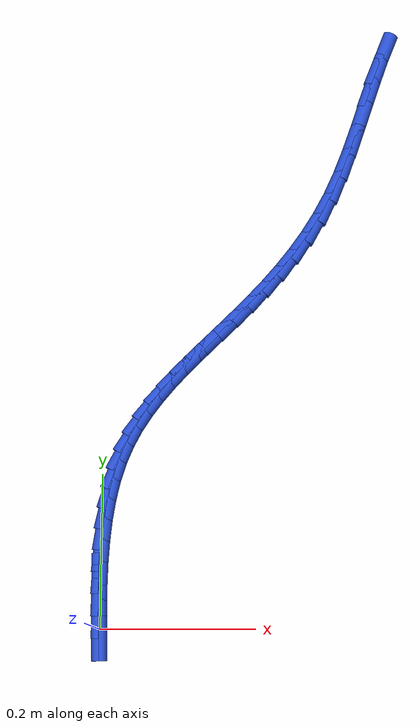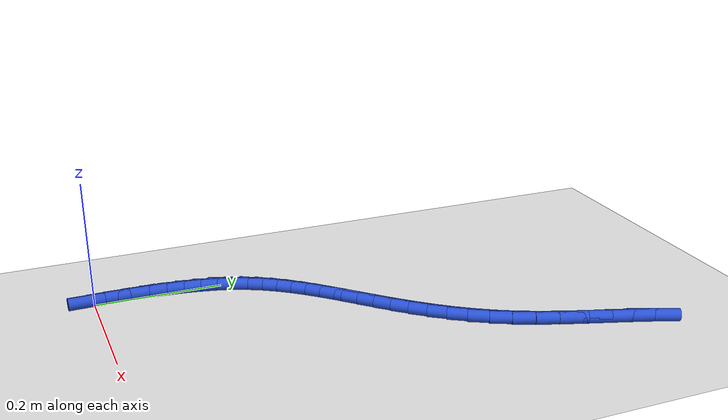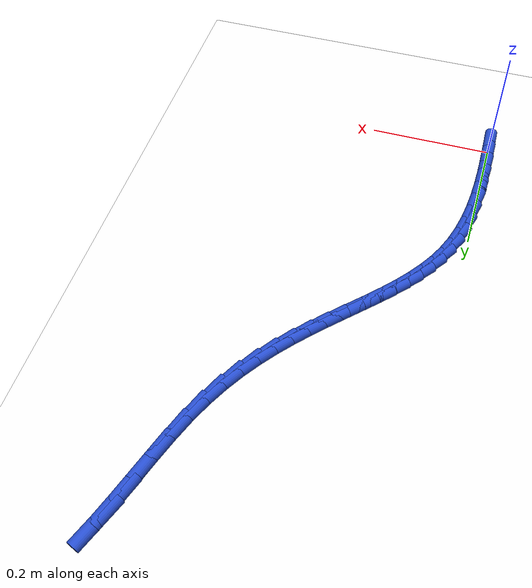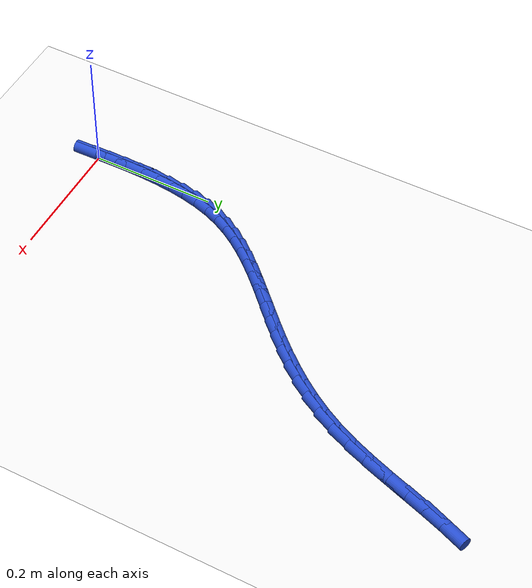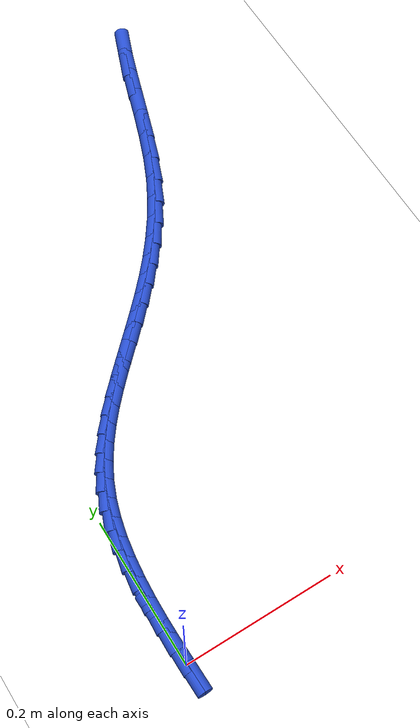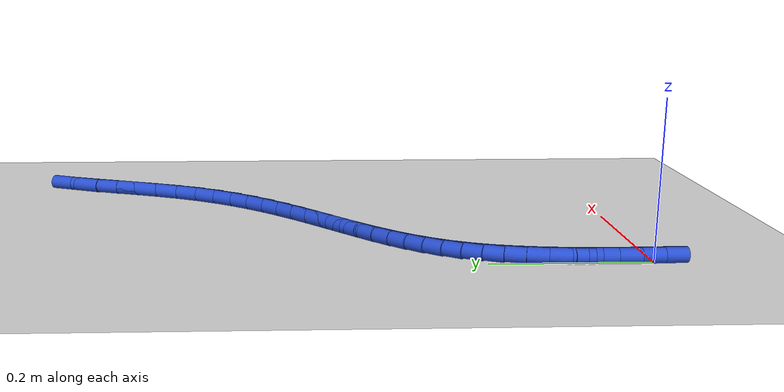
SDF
<sdf version="1.6">
 <world name="default">
  <model name="ground_plane">
   <static>1</static>
   <link name="link">
    <collision name="collision">
     <geometry><plane><normal>0 0 1</normal><size>100 100</size></plane></geometry>
     <surface><friction><ode><mu>100</mu><mu2>50</mu2></ode></friction></surface>
    </collision>
    <visual name="visual">
     <cast_shadows>0</cast_shadows>
     <geometry><plane><normal>0 0 1</normal><size>100 100</size></plane></geometry>
     <material>
      <script><uri>file://media/materials/scripts/gazebo.material</uri><name>Gazebo/WhiteGlow</name></script>
     </material>
    </visual>
   </link>
  </model>
  <model name="line">
   <link name="link_0">
    <pose>-1.2685165418080402e-17 6.938893903907228e-18 0.01 0 1.57 -1.550461917488164</pose>
    <collision name="collision">
     <geometry><cylinder><radius>0.01</radius><length>0.08</length></cylinder></geometry>
    </collision>
    <visual name="visual">
     <material>
      <script><name>Gazebo/Blue</name><uri>file://media/materials/scripts/gazebo.material</uri></script>
     </material>
     <geometry><cylinder><radius>0.01</radius><length>0.08</length></cylinder></geometry>
    </visual>
   </link>
   <link name="link_1">
    <pose>-0.0005686694016888398 0.027962013136870672 0.01 0 1.57 -1.5706656132257417</pose>
    <collision name="collision">
     <geometry><cylinder><radius>0.01</radius><length>0.08</length></cylinder></geometry>
    </collision>
    <visual name="visual">
     <material>
      <script><name>Gazebo/Blue</name><uri>file://media/materials/scripts/gazebo.material</uri></script>
     </material>
     <geometry><cylinder><radius>0.01</radius><length>0.08</length></cylinder></geometry>
    </visual>
   </link>
   <link name="link_2">
    <pose>-0.0005723463543047523 0.05609185932457729 0.01 0 1.57 1.543689909033891</pose>
    <collision name="collision">
     <geometry><cylinder><radius>0.01</radius><length>0.08</length></cylinder></geometry>
    </collision>
    <visual name="visual">
     <material>
      <script><name>Gazebo/Blue</name><uri>file://media/materials/scripts/gazebo.material</uri></script>
     </material>
     <geometry><cylinder><radius>0.01</radius><length>0.08</length></cylinder></geometry>
    </visual>
   </link>
   <link name="link_3">
    <pose>0.00018867997017918132 0.084160486172686 0.01 0 1.57 1.5087614617827332</pose>
    <collision name="collision">
     <geometry><cylinder><radius>0.01</radius><length>0.08</length></cylinder></geometry>
    </collision>
    <visual name="visual">
     <material>
      <script><name>Gazebo/Blue</name><uri>file://media/materials/scripts/gazebo.material</uri></script>
     </material>
     <geometry><cylinder><radius>0.01</radius><length>0.08</length></cylinder></geometry>
    </visual>
   </link>
   <link name="link_4">
    <pose>0.001914120399789892 0.11193884129076302 0.01 0 1.57 1.4651867562117058</pose>
    <collision name="collision">
     <geometry><cylinder><radius>0.01</radius><length>0.08</length></cylinder></geometry>
    </collision>
    <visual name="visual">
     <material>
      <script><name>Gazebo/Blue</name><uri>file://media/materials/scripts/gazebo.material</uri></script>
     </material>
     <geometry><cylinder><radius>0.01</radius><length>0.08</length></cylinder></geometry>
    </visual>
   </link>
   <link name="link_5">
    <pose>0.00480368576255431 0.13919787228837457 0.01 0 1.57 1.4117109105173449</pose>
    <collision name="collision">
     <geometry><cylinder><radius>0.01</radius><length>0.08</length></cylinder></geometry>
    </collision>
    <visual name="visual">
     <material>
      <script><name>Gazebo/Blue</name><uri>file://media/materials/scripts/gazebo.material</uri></script>
     </material>
     <geometry><cylinder><radius>0.01</radius><length>0.08</length></cylinder></geometry>
    </visual>
   </link>
   <link name="link_6">
    <pose>0.009057086886499373 0.16570852677508685 0.01 0 1.57 1.3468005760545543</pose>
    <collision name="collision">
     <geometry><cylinder><radius>0.01</radius><length>0.08</length></cylinder></geometry>
    </collision>
    <visual name="visual">
     <material>
      <script><name>Gazebo/Blue</name><uri>file://media/materials/scripts/gazebo.material</uri></script>
     </material>
     <geometry><cylinder><radius>0.01</radius><length>0.08</length></cylinder></geometry>
    </visual>
   </link>
   <link name="link_7">
    <pose>0.014874034599652001 0.19124175236046598 0.01 0 1.57 1.2687319116251583</pose>
    <collision name="collision">
     <geometry><cylinder><radius>0.01</radius><length>0.08</length></cylinder></geometry>
    </collision>
    <visual name="visual">
     <material>
      <script><name>Gazebo/Blue</name><uri>file://media/materials/scripts/gazebo.material</uri></script>
     </material>
     <geometry><cylinder><radius>0.01</radius><length>0.08</length></cylinder></geometry>
    </visual>
   </link>
   <link name="link_8">
    <pose>0.02245423973003914 0.21556849665407823 0.01 0 1.57 1.1770892142023848</pose>
    <collision name="collision">
     <geometry><cylinder><radius>0.01</radius><length>0.08</length></cylinder></geometry>
    </collision>
    <visual name="visual">
     <material>
      <script><name>Gazebo/Blue</name><uri>file://media/materials/scripts/gazebo.material</uri></script>
     </material>
     <geometry><cylinder><radius>0.01</radius><length>0.08</length></cylinder></geometry>
    </visual>
   </link>
   <link name="link_9">
    <pose>0.031974073909105796 0.23848604095330644 0.01 0 1.57 1.0847701563713708</pose>
    <collision name="collision">
     <geometry><cylinder><radius>0.01</radius><length>0.08</length></cylinder></geometry>
    </collision>
    <visual name="visual">
     <material>
      <script><name>Gazebo/Blue</name><uri>file://media/materials/scripts/gazebo.material</uri></script>
     </material>
     <geometry><cylinder><radius>0.01</radius><length>0.08</length></cylinder></geometry>
    </visual>
   </link>
   <link name="link_10">
    <pose>0.04337170612993816 0.2600604313304327 0.01 0 1.57 1.0020567510092364</pose>
    <collision name="collision">
     <geometry><cylinder><radius>0.01</radius><length>0.08</length></cylinder></geometry>
    </collision>
    <visual name="visual">
     <material>
      <script><name>Gazebo/Blue</name><uri>file://media/materials/scripts/gazebo.material</uri></script>
     </material>
     <geometry><cylinder><radius>0.01</radius><length>0.08</length></cylinder></geometry>
    </visual>
   </link>
   <link name="link_11">
    <pose>0.05644601659074941 0.28051487383656154 0.01 0 1.57 0.9312873132012074</pose>
    <collision name="collision">
     <geometry><cylinder><radius>0.01</radius><length>0.08</length></cylinder></geometry>
    </collision>
    <visual name="visual">
     <material>
      <script><name>Gazebo/Blue</name><uri>file://media/materials/scripts/gazebo.material</uri></script>
     </material>
     <geometry><cylinder><radius>0.01</radius><length>0.08</length></cylinder></geometry>
    </visual>
   </link>
   <link name="link_12">
    <pose>0.07099413260315113 0.3000745523101815 0.01 0 1.57 0.873647891597159</pose>
    <collision name="collision">
     <geometry><cylinder><radius>0.01</radius><length>0.08</length></cylinder></geometry>
    </collision>
    <visual name="visual">
     <material>
      <script><name>Gazebo/Blue</name><uri>file://media/materials/scripts/gazebo.material</uri></script>
     </material>
     <geometry><cylinder><radius>0.01</radius><length>0.08</length></cylinder></geometry>
    </visual>
   </link>
   <link name="link_13">
    <pose>0.08681318147875483 0.31896465058978085 0.01 0 1.57 0.8294813563520967</pose>
    <collision name="collision">
     <geometry><cylinder><radius>0.01</radius><length>0.08</length></cylinder></geometry>
    </collision>
    <visual name="visual">
     <material>
      <script><name>Gazebo/Blue</name><uri>file://media/materials/scripts/gazebo.material</uri></script>
     </material>
     <geometry><cylinder><radius>0.01</radius><length>0.08</length></cylinder></geometry>
    </visual>
   </link>
   <link name="link_14">
    <pose>0.10370029052917212 0.337410352513848 0.01 0 1.57 0.7985771910868928</pose>
    <collision name="collision">
     <geometry><cylinder><radius>0.01</radius><length>0.08</length></cylinder></geometry>
    </collision>
    <visual name="visual">
     <material>
      <script><name>Gazebo/Blue</name><uri>file://media/materials/scripts/gazebo.material</uri></script>
     </material>
     <geometry><cylinder><radius>0.01</radius><length>0.08</length></cylinder></geometry>
    </visual>
   </link>
   <link name="link_15">
    <pose>0.12145258706601467 0.35563684192087136 0.01 0 1.57 0.7804278043434967</pose>
    <collision name="collision">
     <geometry><cylinder><radius>0.01</radius><length>0.08</length></cylinder></geometry>
    </collision>
    <visual name="visual">
     <material>
      <script><name>Gazebo/Blue</name><uri>file://media/materials/scripts/gazebo.material</uri></script>
     </material>
     <geometry><cylinder><radius>0.01</radius><length>0.08</length></cylinder></geometry>
    </visual>
   </link>
   <link name="link_16">
    <pose>0.13986719840089393 0.37386930264933926 0.01 0 1.57 0.774406019735312</pose>
    <collision name="collision">
     <geometry><cylinder><radius>0.01</radius><length>0.08</length></cylinder></geometry>
    </collision>
    <visual name="visual">
     <material>
      <script><name>Gazebo/Blue</name><uri>file://media/materials/scripts/gazebo.material</uri></script>
     </material>
     <geometry><cylinder><radius>0.01</radius><length>0.08</length></cylinder></geometry>
    </visual>
   </link>
   <link name="link_17">
    <pose>0.15874125184542148 0.39233291853774016 0.01 0 1.57 0.779861694862554</pose>
    <collision name="collision">
     <geometry><cylinder><radius>0.01</radius><length>0.08</length></cylinder></geometry>
    </collision>
    <visual name="visual">
     <material>
      <script><name>Gazebo/Blue</name><uri>file://media/materials/scripts/gazebo.material</uri></script>
     </material>
     <geometry><cylinder><radius>0.01</radius><length>0.08</length></cylinder></geometry>
    </visual>
   </link>
   <link name="link_18">
    <pose>0.177871874711209 0.41125287342456246 0.01 0 1.57 0.7961531837774716</pose>
    <collision name="collision">
     <geometry><cylinder><radius>0.01</radius><length>0.08</length></cylinder></geometry>
    </collision>
    <visual name="visual">
     <material>
      <script><name>Gazebo/Blue</name><uri>file://media/materials/scripts/gazebo.material</uri></script>
     </material>
     <geometry><cylinder><radius>0.01</radius><length>0.08</length></cylinder></geometry>
    </visual>
   </link>
   <link name="link_19">
    <pose>0.19705619430986798 0.43085435114829446 0.01 0 1.57 0.8226322566231087</pose>
    <collision name="collision">
     <geometry><cylinder><radius>0.01</radius><length>0.08</length></cylinder></geometry>
    </collision>
    <visual name="visual">
     <material>
      <script><name>Gazebo/Blue</name><uri>file://media/materials/scripts/gazebo.material</uri></script>
     </material>
     <geometry><cylinder><radius>0.01</radius><length>0.08</length></cylinder></geometry>
    </visual>
   </link>
   <link name="link_20">
    <pose>0.21609133795300994 0.45136253554742445 0.01 0 1.57 0.8585991663227327</pose>
    <collision name="collision">
     <geometry><cylinder><radius>0.01</radius><length>0.08</length></cylinder></geometry>
    </collision>
    <visual name="visual">
     <material>
      <script><name>Gazebo/Blue</name><uri>file://media/materials/scripts/gazebo.material</uri></script>
     </material>
     <geometry><cylinder><radius>0.01</radius><length>0.08</length></cylinder></geometry>
    </visual>
   </link>
   <link name="link_21">
    <pose>0.23477443295224665 0.4730026104604412 0.01 0 1.57 0.9032432070917864</pose>
    <collision name="collision">
     <geometry><cylinder><radius>0.01</radius><length>0.08</length></cylinder></geometry>
    </collision>
    <visual name="visual">
     <material>
      <script><name>Gazebo/Blue</name><uri>file://media/materials/scripts/gazebo.material</uri></script>
     </material>
     <geometry><cylinder><radius>0.01</radius><length>0.08</length></cylinder></geometry>
    </visual>
   </link>
   <link name="link_22">
    <pose>0.2529026066191895 0.4959997597258326 0.01 0 1.57 0.9555848078862658</pose>
    <collision name="collision">
     <geometry><cylinder><radius>0.01</radius><length>0.08</length></cylinder></geometry>
    </collision>
    <visual name="visual">
     <material>
      <script><name>Gazebo/Blue</name><uri>file://media/materials/scripts/gazebo.material</uri></script>
     </material>
     <geometry><cylinder><radius>0.01</radius><length>0.08</length></cylinder></geometry>
    </visual>
   </link>
   <link name="link_23">
    <pose>0.2702729862654501 0.5205791671820873 0.01 0 1.57 1.0144366761378216</pose>
    <collision name="collision">
     <geometry><cylinder><radius>0.01</radius><length>0.08</length></cylinder></geometry>
    </collision>
    <visual name="visual">
     <material>
      <script><name>Gazebo/Blue</name><uri>file://media/materials/scripts/gazebo.material</uri></script>
     </material>
     <geometry><cylinder><radius>0.01</radius><length>0.08</length></cylinder></geometry>
    </visual>
   </link>
   <link name="link_24">
    <pose>0.28668269920264006 0.5469660166676936 0.01 0 1.57 1.0784007524170993</pose>
    <collision name="collision">
     <geometry><cylinder><radius>0.01</radius><length>0.08</length></cylinder></geometry>
    </collision>
    <visual name="visual">
     <material>
      <script><name>Gazebo/Blue</name><uri>file://media/materials/scripts/gazebo.material</uri></script>
     </material>
     <geometry><cylinder><radius>0.01</radius><length>0.08</length></cylinder></geometry>
    </visual>
   </link>
   <link name="link_25">
    <pose>0.3019288727423709 0.5753854920211401 0.01 0 1.57 1.1450240405955046</pose>
    <collision name="collision">
     <geometry><cylinder><radius>0.01</radius><length>0.08</length></cylinder></geometry>
    </collision>
    <visual name="visual">
     <material>
      <script><name>Gazebo/Blue</name><uri>file://media/materials/scripts/gazebo.material</uri></script>
     </material>
     <geometry><cylinder><radius>0.01</radius><length>0.08</length></cylinder></geometry>
    </visual>
   </link>
   <link name="link_26">
    <pose>0.31582645677261895 0.6060297179542492 0.01 0 1.57 1.1996217235226938</pose>
    <collision name="collision">
     <geometry><cylinder><radius>0.01</radius><length>0.08</length></cylinder></geometry>
    </collision>
    <visual name="visual">
     <material>
      <script><name>Gazebo/Blue</name><uri>file://media/materials/scripts/gazebo.material</uri></script>
     </material>
     <geometry><cylinder><radius>0.01</radius><length>0.08</length></cylinder></geometry>
    </visual>
   </link>
   <link name="link_27">
    <pose>0.3284830538619791 0.6385479772327747 0.01 0 1.57 1.234031111099753</pose>
    <collision name="collision">
     <geometry><cylinder><radius>0.01</radius><length>0.08</length></cylinder></geometry>
    </collision>
    <visual name="visual">
     <material>
      <script><name>Gazebo/Blue</name><uri>file://media/materials/scripts/gazebo.material</uri></script>
     </material>
     <geometry><cylinder><radius>0.01</radius><length>0.08</length></cylinder></geometry>
    </visual>
   </link>
   <link name="link_28">
    <pose>0.34024562153304766 0.6721455727185245 0.01 0 1.57 1.2508327753435502</pose>
    <collision name="collision">
     <geometry><cylinder><radius>0.01</radius><length>0.08</length></cylinder></geometry>
    </collision>
    <visual name="visual">
     <material>
      <script><name>Gazebo/Blue</name><uri>file://media/materials/scripts/gazebo.material</uri></script>
     </material>
     <geometry><cylinder><radius>0.01</radius><length>0.08</length></cylinder></geometry>
    </visual>
   </link>
   <link name="link_29">
    <pose>0.3514681451042997 0.7060147714029928 0.01 0 1.57 1.2510602079354796</pose>
    <collision name="collision">
     <geometry><cylinder><radius>0.01</radius><length>0.08</length></cylinder></geometry>
    </collision>
    <visual name="visual">
     <material>
      <script><name>Gazebo/Blue</name><uri>file://media/materials/scripts/gazebo.material</uri></script>
     </material>
     <geometry><cylinder><radius>0.01</radius><length>0.08</length></cylinder></geometry>
    </visual>
   </link>
   <link name="link_30">
    <pose>0.36250460989421 0.7393478402776732 0.01 0 1.57 1.2338940209659408</pose>
    <collision name="collision">
     <geometry><cylinder><radius>0.01</radius><length>0.08</length></cylinder></geometry>
    </collision>
    <visual name="visual">
     <material>
      <script><name>Gazebo/Blue</name><uri>file://media/materials/scripts/gazebo.material</uri></script>
     </material>
     <geometry><cylinder><radius>0.01</radius><length>0.08</length></cylinder></geometry>
    </visual>
   </link>
   <link name="link_31">
    <pose>0.37370900122125383 0.7713370463340598 0.01 0 1.57 1.1963354076063053</pose>
    <collision name="collision">
     <geometry><cylinder><radius>0.01</radius><length>0.08</length></cylinder></geometry>
    </collision>
    <visual name="visual">
     <material>
      <script><name>Gazebo/Blue</name><uri>file://media/materials/scripts/gazebo.material</uri></script>
     </material>
     <geometry><cylinder><radius>0.01</radius><length>0.08</length></cylinder></geometry>
    </visual>
   </link>
   <link name="link_280">
    <pose>-1.8648277366750676e-17 1.8041124150158794e-16 0.01 0 1.57 -1.5489345208924608</pose>
    <collision name="collision">
     <geometry><cylinder><radius>0.01</radius><length>0.08</length></cylinder></geometry>
    </collision>
    <visual name="visual">
     <material>
      <script><name>Gazebo/Blue</name><uri>file://media/materials/scripts/gazebo.material</uri></script>
     </material>
     <geometry><cylinder><radius>0.01</radius><length>0.08</length></cylinder></geometry>
    </visual>
   </link>
   <link name="link_281">
    <pose>-0.0006124434675007326 0.028009849552627752 0.01 0 1.57 -1.5599027240223444</pose>
    <collision name="collision">
     <geometry><cylinder><radius>0.01</radius><length>0.08</length></cylinder></geometry>
    </collision>
    <visual name="visual">
     <material>
      <script><name>Gazebo/Blue</name><uri>file://media/materials/scripts/gazebo.material</uri></script>
     </material>
     <geometry><cylinder><radius>0.01</radius><length>0.08</length></cylinder></geometry>
    </visual>
   </link>
   <link name="link_282">
    <pose>-0.0009225388807998739 0.05647455065063316 0.01 0 1.57 -1.5544622998018416</pose>
    <collision name="collision">
     <geometry><cylinder><radius>0.01</radius><length>0.08</length></cylinder></geometry>
    </collision>
    <visual name="visual">
     <material>
      <script><name>Gazebo/Blue</name><uri>file://media/materials/scripts/gazebo.material</uri></script>
     </material>
     <geometry><cylinder><radius>0.01</radius><length>0.08</length></cylinder></geometry>
    </visual>
   </link>
  </model>
 </world>
</sdf>
